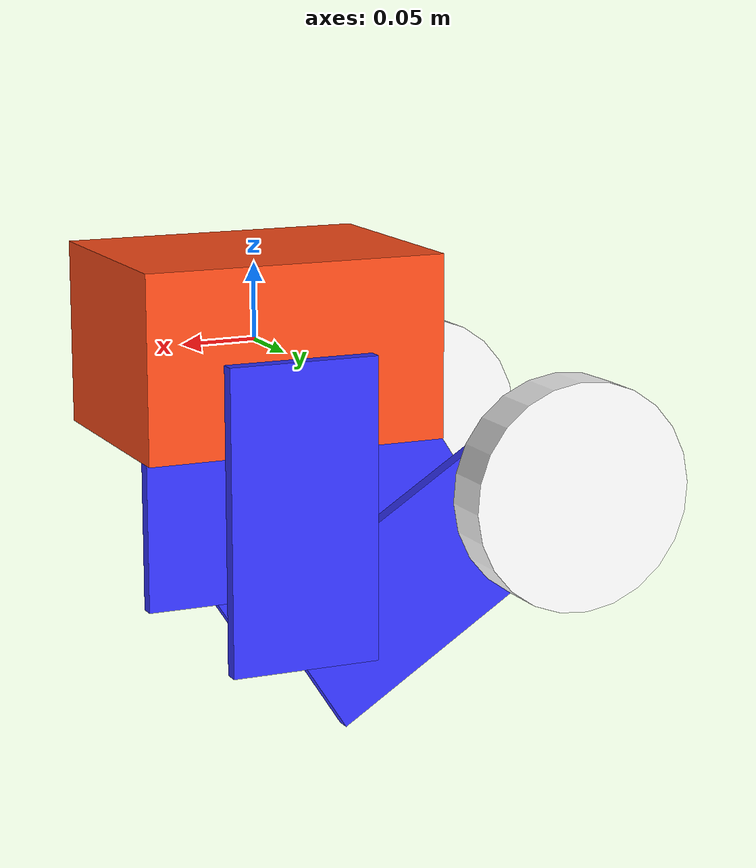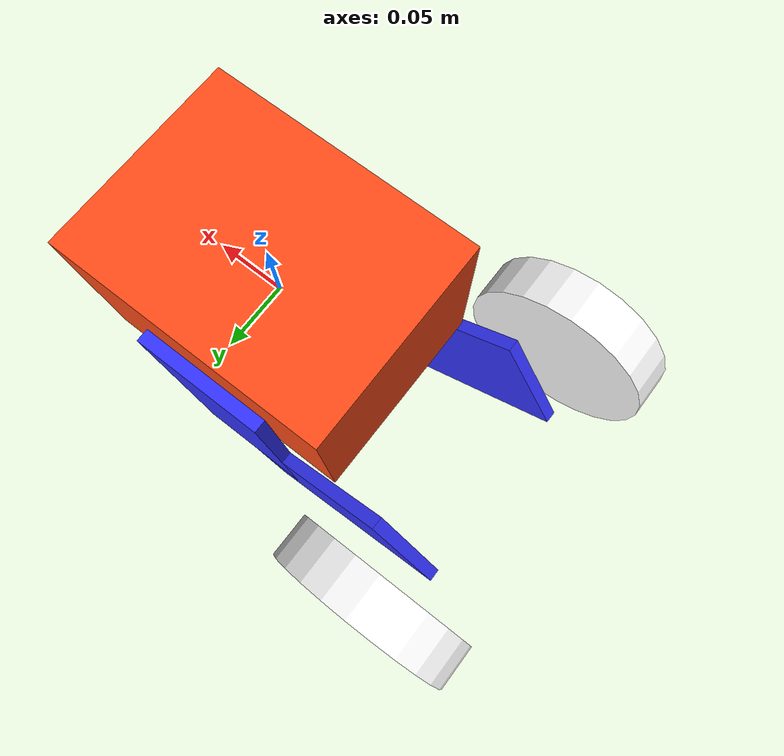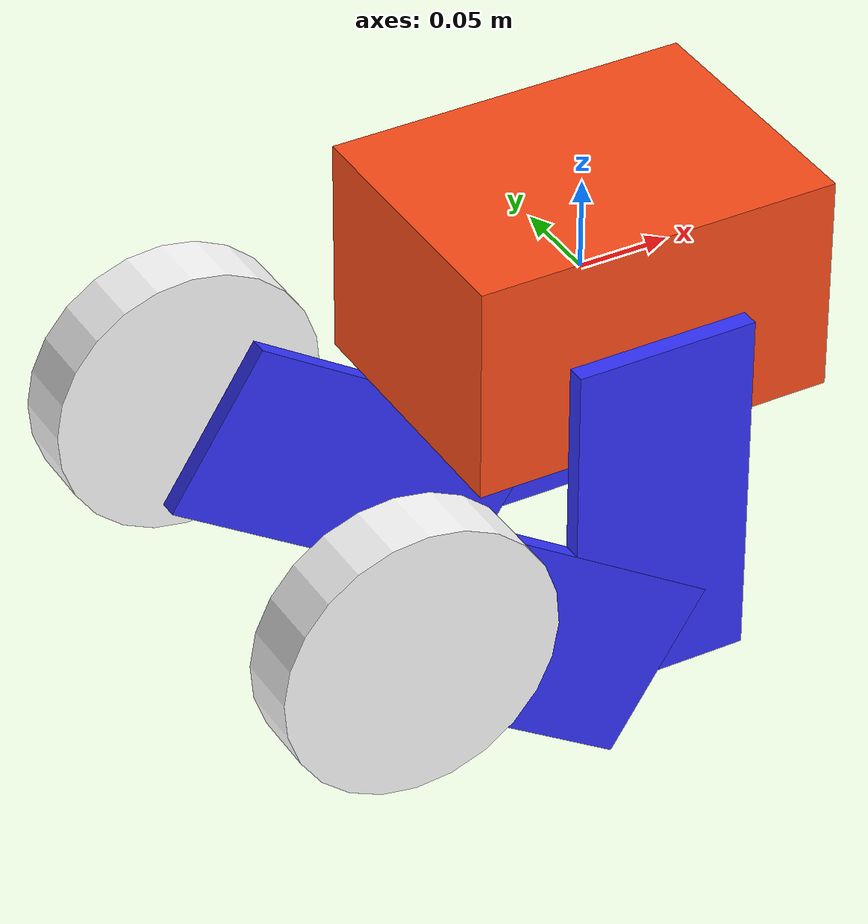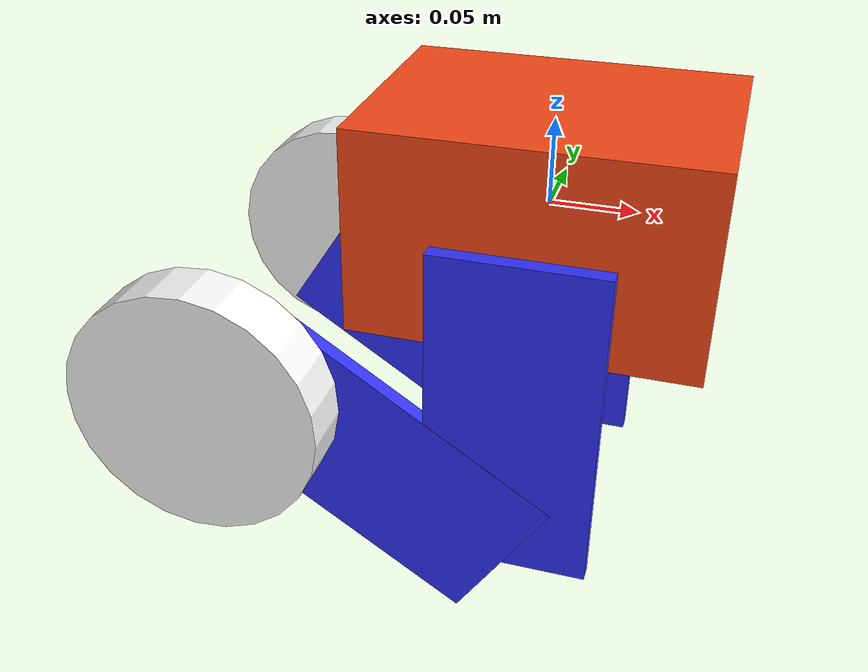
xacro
<?xml version="1.0"?>
<robot xmlns:xacro="http://www.ros.org/wiki/xacro"  name="Model_URDF">

    <material name="white">
        <color rgba="1 1 1 1" />
    </material>

    <material name="orange">
        <color rgba="1 0.3 0.1 1"/>
    </material>

    <material name="blue">
        <color rgba="0.2 0.2 1 1"/>
    </material>

    <material name="black">
        <color rgba="0 0 0 1"/>
    </material>

    <material name="red">
        <color rgba="1 0 0 1"/>
    </material>

    <xacro:include filename="inertial_macros.xacro"/>

    <xacro:property name="wheel_radius" value="0.0855"/>
    <xacro:property name="wheel_length" value="0.045"/>

    <xacro:property name="wheel_mass" value="2.2"/>
    <xacro:property name="chassis_mass" value="2.0"/>
    <xacro:property name="rod_mass" value="1.0"/>

    <!-- Width, length, height = x,y,z -->
    <xacro:property name="chassis_length" value="0.2"/>
    <xacro:property name="chassis_width" value="0.15"/>
    <xacro:property name="chassis_height" value="0.12"/>

    <xacro:property name="rod_length" value="0.1"/>
    <xacro:property name="rod_width" value="0.01"/>
    <xacro:property name="rod_height" value="0.2"/>

    <xacro:property name="hip_offset_z" value="0"/>
    <xacro:property name="hip_offset_y" value="${chassis_width/2 + rod_width/2}"/>
    <xacro:property name="hip_offset_x" value="${rod_height/2}"/>

    <xacro:property name="knee_offset_z" value="0.0"/>
    <xacro:property name="knee_offset_y" value="${chassis_width/2 + rod_width/2}"/>
    <xacro:property name="knee_offset_x" value="${rod_height}"/>

    <xacro:property name="wheel_offset_x" value="${rod_height}"/>
    <xacro:property name="wheel_offset_y" value="0"/>
    <xacro:property name="wheel_offset_z" value="${wheel_radius/2}"/>

    <link name = "base_link">
        <origin xyz="0.0 0.0 0.0" rpy="0.0 0.0 0.0"/>
    </link>

    <joint name="chassis_joint" type="fixed">
        <origin xyz="0.0 0.0 0.0" rpy="0.0 0.0 0.0"/>
        <parent link="base_link"/>
        <child link="chassis"/>
    </joint>

    <link name="chassis">

        <xacro:inertial_box mass="${chassis_mass}" x="${chassis_length}" y="${chassis_width}" z="${chassis_height}">
            <origin xyz="0 0 0" rpy="0 0 0"/>
        </xacro:inertial_box>

        <visual>
            <origin xyz="0.0 0.0 0.0" rpy="0.0 0.0 0.0"/>
            <geometry>
                <box size="${chassis_length} ${chassis_width} ${chassis_height}"/>
            </geometry>
            <material name="orange"/>
        </visual>

        <collision>
            <origin xyz="0.0 0.0 0.0" rpy="0.0 0.0 0.0"/>
            <geometry>
                <box size="${chassis_length -0.01} ${chassis_width-0.01} ${chassis_height-0.01}"/>
            </geometry>
            <material name="orange"/>
        </collision>

    </link>

    <link name="left_hip">

        <xacro:inertial_box mass="${rod_mass}" x="${rod_length}" y="${rod_width}" z="${rod_height}">
            <origin xyz="${hip_offset_x} 0 0" rpy="1.5708 0 -1.5708"/>
        </xacro:inertial_box>

        <visual>
            <origin xyz="${hip_offset_x} 0.0 0.0" rpy="1.5708 0 -1.5708"/>            <geometry>
                <box size="${rod_length} ${rod_width} ${rod_height}"/>
            </geometry>
            <material name="blue"/>
        </visual>

        <collision>
            <origin xyz="${hip_offset_x} 0.0 0.0" rpy="1.5708 0 -1.5708"/>
            <geometry>
                <box size="${rod_length -0.01} ${rod_width -0.01} ${rod_height -0.02}"/>
            </geometry>
            <material name="blue"/>
        </collision>

    </link>

    <joint name="left_hip_joint" type="revolute">
      <origin xyz="0 ${hip_offset_y} 0" rpy="-1.5708 1.5708 0"/>
      <parent link="chassis"/>
      <child link="left_hip"/>
      <axis xyz="0 0 1.0"/>
      <limit lower="-1.5708" upper="0.0" effort="35.0" velocity="5.0"/>
    </joint>

    <link name="left_knee">

        <xacro:inertial_box mass="${rod_mass}" x="${rod_length}" y="${rod_width}" z="${rod_height}">
            <origin xyz="${knee_offset_x/2} 0 0" rpy="1.5708 0 -1.5708"/>
        </xacro:inertial_box>

        <visual>
            <origin xyz="${knee_offset_x/2} 0.0 0.0" rpy="1.5708 0 -1.5708"/>
            <geometry>
                <box size="${rod_length} ${rod_width} ${rod_height}"/>
            </geometry>
            <material name="blue"/>
        </visual>

        <collision>
            <origin xyz="${knee_offset_x/2} 0.0 0.0" rpy="1.5708 0 -1.5708"/>
            <geometry>
                <box size="${rod_length -0.01} ${rod_width -0.01} ${rod_height -0.02}"/>
            </geometry>
            <material name="blue"/>
        </collision>

    </link>

    <joint name="left_knee_joint" type="revolute">
      <origin xyz="${knee_offset_x} 0 0" rpy="0 0 -1.5708"/>
      <parent link="left_hip"/>
      <child link="left_knee"/>
      <axis xyz="0 0 1.0"/>
      <limit lower="-3.142" upper="-2.0" effort="35.0" velocity="5.0"/>
    </joint>

    <link name="left_wheel">
        <xacro:inertial_cylinder mass="${wheel_mass}" length="${wheel_length}" radius="${wheel_radius}">
            <origin xyz="0 0 0" rpy="0 0 0"/>
        </xacro:inertial_cylinder>

        <visual>
            <origin xyz="0 0.0 0" rpy="0 0 0"/>
            <geometry>
                <cylinder radius="${wheel_radius-0.01}" length="${wheel_length-0.01}"/>
            </geometry>
            <material name ='white' />
        </visual>

        <collision>
            <origin xyz="0.0 0.0 0.0" rpy="0.0 0.0 0.0"/>
            <geometry>
                <cylinder radius="${wheel_radius-0.01}" length="${wheel_length-0.01}"/>
            </geometry>
            <material name ='white' />
        </collision>
    </link>

    <joint name="l_wheel_joint" type="continuous">
      <origin xyz="${wheel_offset_x} 0 ${wheel_offset_z}" rpy="0 0 -1.5708"/>
      <parent link="left_knee"/>
      <child link="left_wheel"/>
      <axis xyz="0 0 1.0"/>
    </joint>

    <link name="right_hip">

        <xacro:inertial_box mass="${rod_mass}" x="${rod_length}" y="${rod_width}" z="${rod_height}">
            <origin xyz="${hip_offset_x} 0 0" rpy="1.5708 0 -1.5708"/>
        </xacro:inertial_box>

        <visual>
            <origin xyz="${hip_offset_x} 0.0 0.0" rpy="1.5708 0 -1.5708"/>
            <geometry>
                <box size="${rod_length} ${rod_width} ${rod_height}"/>
            </geometry>
            <material name="blue"/>
        </visual>

        <collision>
            <origin xyz="${hip_offset_x} 0.0 0.0" rpy="1.5708 0 -1.5708"/>
            <geometry>
                <box size="${rod_length-0.01} ${rod_width-0.01} ${rod_height-0.02}"/>
            </geometry>
            <material name="blue"/>
        </collision>

    </link>

    <joint name="right_hip_joint" type="revolute">
      <origin xyz="0 -${hip_offset_y} 0" rpy="-1.5708 1.5708 0"/>
      <parent link="chassis"/>
      <child link="right_hip"/>
      <axis xyz="0 0 1.0"/>
      <limit lower="-1.5708" upper="0.0" effort="35.0" velocity="5.0"/>
    </joint>

    <link name="right_knee">

        <xacro:inertial_box mass="${rod_mass}" x="${rod_length}" y="${rod_width}" z="${rod_height}">
            <origin xyz="${knee_offset_x/2} 0 0" rpy="1.5708 0 -1.5708"/>
        </xacro:inertial_box>

        <visual>
            <origin xyz="${knee_offset_x/2} 0.0 0.0" rpy="1.5708 0 -1.5708"/>
            <geometry>
                <box size="${rod_length} ${rod_width} ${rod_height}"/>
            </geometry>
            <material name="blue"/>
        </visual>

        <collision>
            <origin xyz="${knee_offset_x/2} 0.0 0.0" rpy="1.5708 0 -1.5708"/>
            <geometry>
                <box size="${rod_length-0.01} ${rod_width-0.01} ${rod_height-0.02}"/>
            </geometry>
            <material name="blue"/>
        </collision>

    </link>

    <joint name="right_knee_joint" type="revolute">
      <origin xyz="${knee_offset_x} 0 0" rpy="0 0 -1.5708"/>
      <parent link="right_hip"/>
      <child link="right_knee"/>
      <axis xyz="0 0 1.0"/>
      <limit lower="-3.142" upper="-2.0" effort="35.0" velocity="5.0"/>
    </joint>

    <link name="right_wheel">
        <xacro:inertial_cylinder mass="${wheel_mass}" length="${wheel_length}" radius="${wheel_radius}">
            <origin xyz="0 0 0" rpy="0 0 0"/>
        </xacro:inertial_cylinder>

        <visual>
            <origin xyz="0 0.0 0" rpy="0 0 0"/>
            <geometry>
                <cylinder radius="${wheel_radius-0.01}" length="${wheel_length-0.01}"/>
            </geometry>
            <material name ='white' />
        </visual>

        <collision>
            <origin xyz="0.0 0.0 0.0" rpy="0.0 0.0 0.0"/>
            <geometry>
                <cylinder radius="${wheel_radius-0.01}" length="${wheel_length-0.01}"/>
            </geometry>
            <material name ='white' />
        </collision>
    </link>

    <joint name="r_wheel_joint" type="continuous">
      <origin xyz="${wheel_offset_x} 0 -${wheel_offset_z}" rpy="0 0 -1.5708"/>
      <parent link="right_knee"/>
      <child link="right_wheel"/>
      <axis xyz="0 0 -1.0"/>
    </joint>

</robot>
